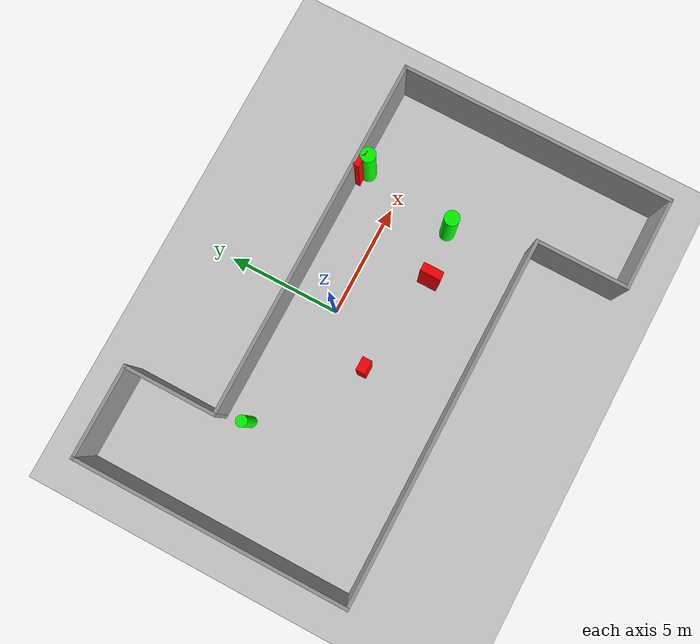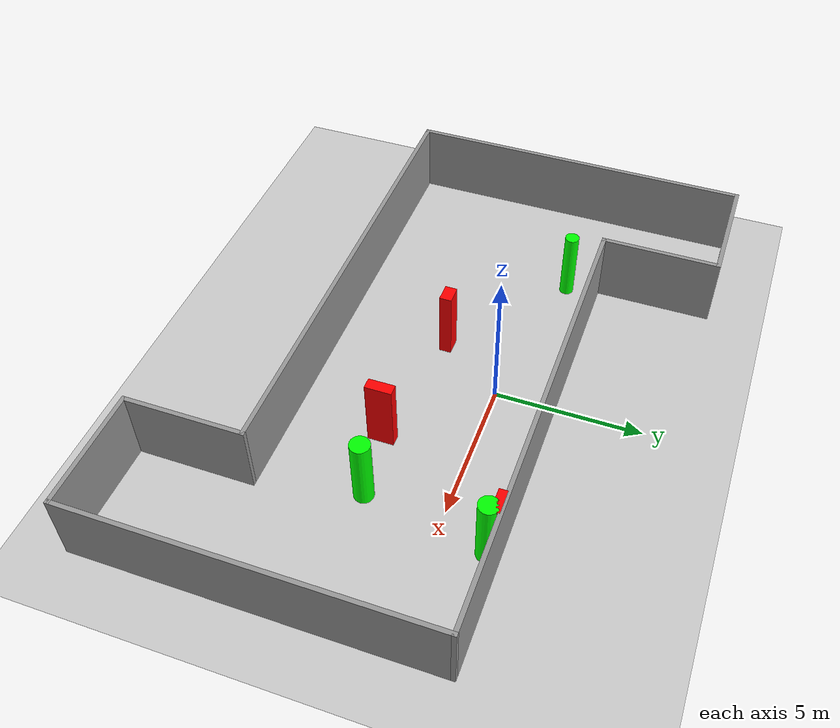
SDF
<sdf version="1.7">
 <world name="default">
  <light name="sun" type="directional">
   <pose>0 0 10 0 -0 0</pose>
   <diffuse>0.8 0.8 0.8 1</diffuse>
   <specular>0.2 0.2 0.2 1</specular>
   <attenuation>
    <range>1000</range>
    <constant>0.9</constant>
    <linear>0.01</linear>
    <quadratic>0.001</quadratic>
   </attenuation>
   <direction>-0.5 0.1 -0.9</direction>
   <spot><inner_angle>0</inner_angle><outer_angle>0</outer_angle><falloff>0</falloff></spot>
  </light>
  <model name="ground_plane">
   <static>1</static>
   <link name="link">
    <collision name="collision">
     <geometry><plane><normal>0 0 1</normal><size>100 100</size></plane></geometry>
     <surface>
      <contact><collide_bitmask>65535</collide_bitmask></contact>
      <friction><ode><mu>100</mu><mu2>50</mu2></ode></friction>
     </surface>
    </collision>
    <visual name="visual">
     <cast_shadows>0</cast_shadows>
     <geometry><plane><normal>0 0 1</normal><size>100 100</size></plane></geometry>
     <material>
      <script><uri>file://media/materials/scripts/gazebo.material</uri><name>Gazebo/Grey</name></script>
     </material>
    </visual>
   </link>
  </model>
  <gravity>0 0 -9.8</gravity>
  <magnetic_field>6e-06 2.3e-05 -4.2e-05</magnetic_field>
  <atmosphere type="adiabatic"/>
  <physics type="ode">
   <max_step_size>0.001</max_step_size>
   <real_time_factor>1</real_time_factor>
   <real_time_update_rate>1000</real_time_update_rate>
  </physics>
  <scene><ambient>0.4 0.4 0.4 1</ambient><background>0.7 0.7 0.7 1</background><shadows>1</shadows></scene>
  <spherical_coordinates>
   <surface_model>EARTH_WGS84</surface_model>
   <latitude_deg>0</latitude_deg>
   <longitude_deg>0</longitude_deg>
   <elevation>0</elevation>
   <heading_deg>0</heading_deg>
  </spherical_coordinates>
  <model name="my_base_walls">
   <link name="Wall_13">
    <collision name="Wall_13_Collision">
     <geometry><box><size>12.15 0.15 2.5</size></box></geometry>
     <pose>0 0 1.25 0 -0 0</pose>
    </collision>
    <visual name="Wall_13_Visual">
     <pose>0 0 1.25 0 -0 0</pose>
     <geometry><box><size>12.15 0.15 2.5</size></box></geometry>
     <material>
      <script><uri>file://media/materials/scripts/gazebo.material</uri><name>Gazebo/Grey</name></script>
      <ambient>1 1 1 1</ambient>
     </material>
     <meta><layer>0</layer></meta>
    </visual>
    <pose>10 -2 0 0 -0 1.5708</pose>
   </link>
   <link name="Wall_15">
    <collision name="Wall_15_Collision">
     <geometry><box><size>16.15 0.15 2.5</size></box></geometry>
     <pose>0 0 1.25 0 -0 0</pose>
    </collision>
    <visual name="Wall_15_Visual">
     <pose>0 0 1.25 0 -0 0</pose>
     <geometry><box><size>16.15 0.15 2.5</size></box></geometry>
     <material>
      <script><uri>file://media/materials/scripts/gazebo.material</uri><name>Gazebo/Grey</name></script>
      <ambient>1 1 1 1</ambient>
     </material>
     <meta><layer>0</layer></meta>
    </visual>
    <pose>2 4 0 0 -0 3.14159</pose>
   </link>
   <link name="Wall_17">
    <collision name="Wall_17_Collision">
     <geometry><box><size>4.15 0.15 2.5</size></box></geometry>
     <pose>0 0 1.25 0 -0 0</pose>
    </collision>
    <visual name="Wall_17_Visual">
     <pose>0 0 1.25 0 -0 0</pose>
     <geometry><box><size>4.15 0.15 2.5</size></box></geometry>
     <material>
      <script><uri>file://media/materials/scripts/gazebo.material</uri><name>Gazebo/Grey</name></script>
      <ambient>1 1 1 1</ambient>
     </material>
     <meta><layer>0</layer></meta>
    </visual>
    <pose>6 -6 0 0 -0 -1.5708</pose>
   </link>
   <link name="Wall_19">
    <collision name="Wall_19_Collision">
     <geometry><box><size>12.15 0.15 2.5</size></box></geometry>
     <pose>0 0 1.25 0 -0 0</pose>
    </collision>
    <visual name="Wall_19_Visual">
     <pose>0 0 1.25 0 -0 0</pose>
     <geometry><box><size>12.15 0.15 2.5</size></box></geometry>
     <material>
      <script><uri>file://media/materials/scripts/gazebo.material</uri><name>Gazebo/Grey</name></script>
      <ambient>1 1 1 1</ambient>
     </material>
     <meta><layer>0</layer></meta>
    </visual>
    <pose>-10 2 0 0 -0 1.5708</pose>
   </link>
   <link name="Wall_21">
    <collision name="Wall_21_Collision">
     <geometry><box><size>4.15 0.15 2.5</size></box></geometry>
     <pose>0 0 1.25 0 -0 0</pose>
    </collision>
    <visual name="Wall_21_Visual">
     <pose>0 0 1.25 0 -0 0</pose>
     <geometry><box><size>4.15 0.15 2.5</size></box></geometry>
     <material>
      <script><uri>file://media/materials/scripts/gazebo.material</uri><name>Gazebo/Grey</name></script>
      <ambient>1 1 1 1</ambient>
     </material>
     <meta><layer>0</layer></meta>
    </visual>
    <pose>-8 8 0 0 -0 0</pose>
   </link>
   <link name="Wall_23">
    <collision name="Wall_23_Collision">
     <geometry><box><size>4.15 0.15 2.5</size></box></geometry>
     <pose>0 0 1.25 0 -0 0</pose>
    </collision>
    <visual name="Wall_23_Visual">
     <pose>0 0 1.25 0 -0 0</pose>
     <geometry><box><size>4.15 0.15 2.5</size></box></geometry>
     <material>
      <script><uri>file://media/materials/scripts/gazebo.material</uri><name>Gazebo/Grey</name></script>
      <ambient>1 1 1 1</ambient>
     </material>
     <meta><layer>0</layer></meta>
    </visual>
    <pose>-6 6 0 0 -0 -1.5708</pose>
   </link>
   <link name="Wall_25">
    <collision name="Wall_25_Collision">
     <geometry><box><size>4.15 0.15 2.5</size></box></geometry>
     <pose>0 0 1.25 0 -0 0</pose>
    </collision>
    <visual name="Wall_25_Visual">
     <pose>0 0 1.25 0 -0 0</pose>
     <geometry><box><size>4.15 0.15 2.5</size></box></geometry>
     <material>
      <script><uri>file://media/materials/scripts/gazebo.material</uri><name>Gazebo/Grey</name></script>
      <ambient>1 1 1 1</ambient>
     </material>
     <meta><layer>0</layer></meta>
    </visual>
    <pose>8 -8 0 0 -0 0</pose>
   </link>
   <link name="Wall_9">
    <collision name="Wall_9_Collision">
     <geometry><box><size>16.15 0.15 2.5</size></box></geometry>
     <pose>0 0 1.25 0 -0 0</pose>
    </collision>
    <visual name="Wall_9_Visual">
     <pose>0 0 1.25 0 -0 0</pose>
     <geometry><box><size>16.15 0.15 2.5</size></box></geometry>
     <material>
      <script><uri>file://media/materials/scripts/gazebo.material</uri><name>Gazebo/Grey</name></script>
      <ambient>1 1 1 1</ambient>
     </material>
     <meta><layer>0</layer></meta>
    </visual>
    <pose>-2 -4 0 0 -0 3.14159</pose>
   </link>
   <static>1</static>
   <pose>-0 -2 0 0 -0 0</pose>
  </model>
  <model name="cylinder1">
   <static>1</static>
   <link name="link">
    <inertial>
     <mass>1</mass>
     <inertia><ixx>0.5</ixx><ixy>0</ixy><ixz>0</ixz><iyy>0.5</iyy><iyz>0</iyz><izz>1</izz></inertia>
    </inertial>
    <collision name="collision">
     <geometry><cylinder><radius>0.3323746027970764</radius><length>2.5</length></cylinder></geometry>
    </collision>
    <visual name="visual">
     <geometry><cylinder><radius>0.3323746027970764</radius><length>2.5</length></cylinder></geometry>
     <material>
      <ambient>0 1 0 1</ambient>
      <diffuse>0 1 0 1</diffuse>
      <specular>0.1 0.1 0.1 1</specular>
      <emissive>0 0 0 0</emissive>
     </material>
    </visual>
   </link>
   <pose>5.991357056139519 1.6154033805963701 1.25 0 0 0</pose>
  </model>
  <model name="cylinder2">
   <static>1</static>
   <link name="link">
    <inertial>
     <mass>1</mass>
     <inertia><ixx>0.5</ixx><ixy>0</ixy><ixz>0</ixz><iyy>0.5</iyy><iyz>0</iyz><izz>1</izz></inertia>
    </inertial>
    <collision name="collision">
     <geometry><cylinder><radius>0.33171796916773383</radius><length>2.5</length></cylinder></geometry>
    </collision>
    <visual name="visual">
     <geometry><cylinder><radius>0.33171796916773383</radius><length>2.5</length></cylinder></geometry>
     <material>
      <ambient>0 1 0 1</ambient>
      <diffuse>0 1 0 1</diffuse>
      <specular>0.1 0.1 0.1 1</specular>
      <emissive>0 0 0 0</emissive>
     </material>
    </visual>
   </link>
   <pose>5.243791236164956 -2.5778877446381854 1.25 0 0 0</pose>
  </model>
  <model name="cylinder3">
   <static>1</static>
   <link name="link">
    <inertial>
     <mass>1</mass>
     <inertia><ixx>0.5</ixx><ixy>0</ixy><ixz>0</ixz><iyy>0.5</iyy><iyz>0</iyz><izz>1</izz></inertia>
    </inertial>
    <collision name="collision">
     <geometry><cylinder><radius>0.24364810774679627</radius><length>2.5</length></cylinder></geometry>
    </collision>
    <visual name="visual">
     <geometry><cylinder><radius>0.24364810774679627</radius><length>2.5</length></cylinder></geometry>
     <material>
      <ambient>0 1 0 1</ambient>
      <diffuse>0 1 0 1</diffuse>
      <specular>0.1 0.1 0.1 1</specular>
      <emissive>0 0 0 0</emissive>
     </material>
    </visual>
   </link>
   <pose>-5.713952210737817 0.9349530025114348 1.25 0 0 0</pose>
  </model>
  <model name="box1">
   <static>1</static>
   <link name="link">
    <inertial>
     <mass>1</mass>
     <inertia><ixx>0.083</ixx><ixy>0</ixy><ixz>0</ixz><iyy>0.083</iyy><iyz>0</iyz><izz>0.083</izz></inertia>
    </inertial>
    <collision name="collision">
     <geometry><box><size>0.6029596673909607 0.41272213962224263 2.5</size></box></geometry>
    </collision>
    <visual name="visual">
     <geometry><box><size>0.6029596673909607 0.41272213962224263 2.5</size></box></geometry>
     <material>
      <ambient>1 0 0 1</ambient>
      <diffuse>1 0 0 1</diffuse>
      <specular>0.1 0.1 0.1 1</specular>
      <emissive>0 0 0 0</emissive>
     </material>
    </visual>
    <sensor name="my_contact" type="contact">
     <contact><collision>box_collision</collision><topic>__default_topic__</topic></contact>
    </sensor>
   </link>
   <pose>-1.5998906410247402 -2.2305167259190073 1.25 0 0 0</pose>
  </model>
  <model name="box2">
   <static>1</static>
   <link name="link">
    <inertial>
     <mass>1</mass>
     <inertia><ixx>0.083</ixx><ixy>0</ixy><ixz>0</ixz><iyy>0.083</iyy><iyz>0</iyz><izz>0.083</izz></inertia>
    </inertial>
    <collision name="collision">
     <geometry><box><size>0.37096004804634797 0.8903868533850894 2.5</size></box></geometry>
    </collision>
    <visual name="visual">
     <geometry><box><size>0.37096004804634797 0.8903868533850894 2.5</size></box></geometry>
     <material>
      <ambient>1 0 0 1</ambient>
      <diffuse>1 0 0 1</diffuse>
      <specular>0.1 0.1 0.1 1</specular>
      <emissive>0 0 0 0</emissive>
     </material>
    </visual>
    <sensor name="my_contact" type="contact">
     <contact><collision>box_collision</collision><topic>__default_topic__</topic></contact>
    </sensor>
   </link>
   <pose>2.964528243609001 -2.861339207660837 1.25 0 0 0</pose>
  </model>
  <model name="box3">
   <static>1</static>
   <link name="link">
    <inertial>
     <mass>1</mass>
     <inertia><ixx>0.083</ixx><ixy>0</ixy><ixz>0</ixz><iyy>0.083</iyy><iyz>0</iyz><izz>0.083</izz></inertia>
    </inertial>
    <collision name="collision">
     <geometry><box><size>0.8057463744528606 0.2818668774971129 2.5</size></box></geometry>
    </collision>
    <visual name="visual">
     <geometry><box><size>0.8057463744528606 0.2818668774971129 2.5</size></box></geometry>
     <material>
      <ambient>1 0 0 1</ambient>
      <diffuse>1 0 0 1</diffuse>
      <specular>0.1 0.1 0.1 1</specular>
      <emissive>0 0 0 0</emissive>
     </material>
    </visual>
    <sensor name="my_contact" type="contact">
     <contact><collision>box_collision</collision><topic>__default_topic__</topic></contact>
    </sensor>
   </link>
   <pose>5.754785204358605 1.8458994374957678 1.25 0 0 0</pose>
  </model>
 </world>
</sdf>
